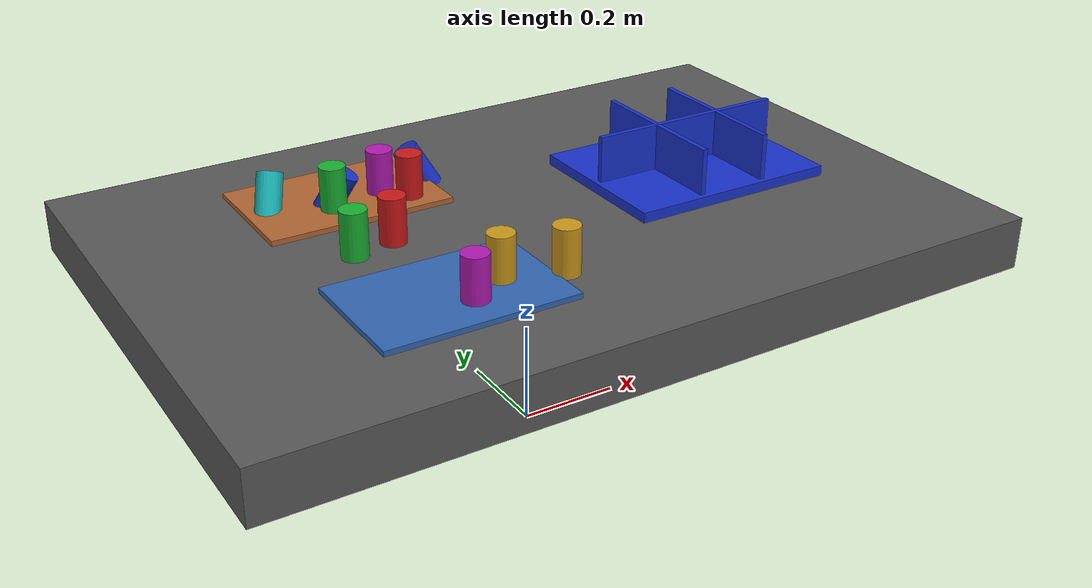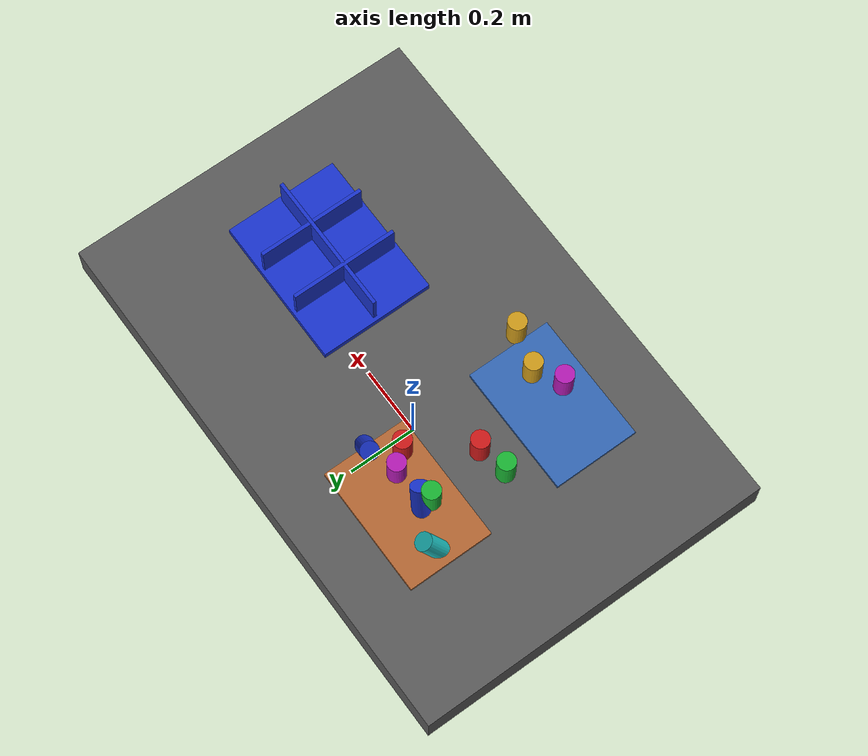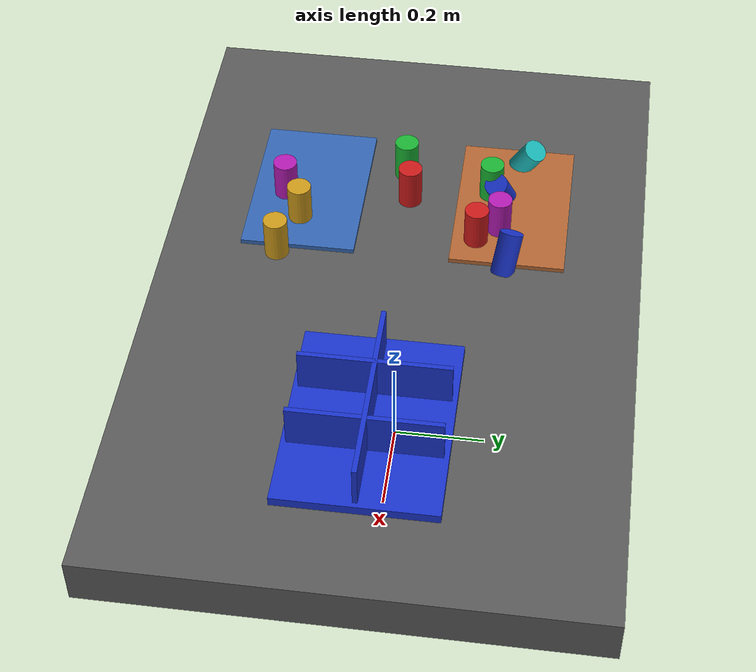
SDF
<?xml version="1.0" ?>
<sdf version="1.9">
  <!-- Standalone M1B scene.  The controller-backed Panda is spawned by the
       existing launch path; this file never alters the frozen M1A cube world. -->
  <world name="industrial_cylinder_v1">
    <physics name="bullet" type="bullet"><max_step_size>0.001</max_step_size><real_time_factor>1.0</real_time_factor></physics>
    <plugin name="gz::sim::systems::Physics" filename="gz-sim-physics-system"><engine><filename>gz-physics-bullet-featherstone-plugin</filename></engine></plugin>
    <plugin name="gz::sim::systems::UserCommands" filename="gz-sim-user-commands-system"/>
    <plugin name="gz::sim::systems::SceneBroadcaster" filename="gz-sim-scene-broadcaster-system"/>
    <plugin name="gz::sim::systems::Sensors" filename="gz-sim-sensors-system"><render_engine>ogre2</render_engine></plugin>
    <gravity>0 0 -9.81</gravity>
    <light type="directional" name="industrial_light"><pose>0 0 5 0 0 0</pose><direction>-0.3 0.2 -0.9</direction><diffuse>0.9 0.9 0.9 1</diffuse></light>
    <model name="industrial_work_table"><static>true</static><link name="link"><pose>0 0 0.4 0 0 0</pose><collision name="collision"><geometry><box><size>1.5 1.0 0.1</size></box></geometry></collision><visual name="visual"><geometry><box><size>1.5 1.0 0.1</size></box></geometry><material><diffuse>0.35 0.35 0.35 1</diffuse></material></visual></link></model>
    <model name="camera_fixture"><static>true</static><link name="camera_rgbd"><pose>-0.80 -0.80 1.40 0 0.77 0.93</pose><sensor name="front_rgbd" type="rgbd_camera"><always_on>1</always_on><update_rate>15</update_rate><topic>/xh/camera/rgbd</topic><camera><horizontal_fov>1.047</horizontal_fov><image><width>640</width><height>480</height><format>R8G8B8</format></image><clip><near>0.1</near><far>4.0</far></clip></camera></sensor></link></model>
    <model name="incoming_zone_a"><static>true</static><link name="link"><pose>-0.28 -0.22 0.455 0 0 0</pose><visual name="visual"><geometry><box><size>0.36 0.24 0.01</size></box></geometry><material><diffuse>0.2 0.4 0.7 1</diffuse></material></visual></link></model>
    <model name="incoming_zone_b"><static>true</static><link name="link"><pose>-0.28 0.22 0.455 0 0 0</pose><visual name="visual"><geometry><box><size>0.36 0.24 0.01</size></box></geometry><material><diffuse>0.7 0.4 0.2 1</diffuse></material></visual></link></model>
    <!-- M1B_RANDOM_PARTS_BEGIN -->
    <model name="cylinder_01"><pose>-0.2744 -0.0021 0.5000 0.0000 0.0000 -2.6493</pose><link name="link"><inertial><mass>0.06</mass></inertial><collision name="collision"><geometry><cylinder><radius>0.025</radius><length>0.09</length></cylinder></geometry></collision><visual name="visual"><geometry><cylinder><radius>0.025</radius><length>0.09</length></cylinder></geometry><material><diffuse>0.800 0.100 0.100 1</diffuse><specular>0.15 0.15 0.15 1</specular></material></visual></link></model>
    <model name="cylinder_02"><pose>-0.3091 0.1696 0.5000 3.1416 0.0000 1.0308</pose><link name="link"><inertial><mass>0.06</mass></inertial><collision name="collision"><geometry><cylinder><radius>0.025</radius><length>0.09</length></cylinder></geometry></collision><visual name="visual"><geometry><cylinder><radius>0.025</radius><length>0.09</length></cylinder></geometry><material><diffuse>0.100 0.700 0.200 1</diffuse><specular>0.15 0.15 0.15 1</specular></material></visual></link></model>
    <model name="cylinder_03"><pose>-0.1120 0.2198 0.4800 0.4500 -0.3000 -1.3213</pose><link name="link"><inertial><mass>0.06</mass></inertial><collision name="collision"><geometry><cylinder><radius>0.025</radius><length>0.09</length></cylinder></geometry></collision><visual name="visual"><geometry><cylinder><radius>0.025</radius><length>0.09</length></cylinder></geometry><material><diffuse>0.100 0.200 0.800 1</diffuse><specular>0.15 0.15 0.15 1</specular></material></visual></link></model>
    <model name="cylinder_04"><pose>-0.0803 -0.2590 0.5000 0.0000 0.0000 1.3158</pose><link name="link"><inertial><mass>0.06</mass></inertial><collision name="collision"><geometry><cylinder><radius>0.025</radius><length>0.09</length></cylinder></geometry></collision><visual name="visual"><geometry><cylinder><radius>0.025</radius><length>0.09</length></cylinder></geometry><material><diffuse>0.800 0.600 0.100 1</diffuse><specular>0.15 0.15 0.15 1</specular></material></visual></link></model>
    <model name="cylinder_05"><pose>-0.2027 0.1957 0.5000 3.1416 0.0000 1.6928</pose><link name="link"><inertial><mass>0.06</mass></inertial><collision name="collision"><geometry><cylinder><radius>0.025</radius><length>0.09</length></cylinder></geometry></collision><visual name="visual"><geometry><cylinder><radius>0.025</radius><length>0.09</length></cylinder></geometry><material><diffuse>0.700 0.100 0.700 1</diffuse><specular>0.15 0.15 0.15 1</specular></material></visual></link></model>
    <model name="cylinder_06"><pose>-0.4080 0.2372 0.4800 0.4500 -0.3000 3.0879</pose><link name="link"><inertial><mass>0.06</mass></inertial><collision name="collision"><geometry><cylinder><radius>0.025</radius><length>0.09</length></cylinder></geometry></collision><visual name="visual"><geometry><cylinder><radius>0.025</radius><length>0.09</length></cylinder></geometry><material><diffuse>0.100 0.700 0.700 1</diffuse><specular>0.15 0.15 0.15 1</specular></material></visual></link></model>
    <model name="cylinder_07"><pose>-0.1642 0.1505 0.5000 0.0000 0.0000 -2.7963</pose><link name="link"><inertial><mass>0.06</mass></inertial><collision name="collision"><geometry><cylinder><radius>0.025</radius><length>0.09</length></cylinder></geometry></collision><visual name="visual"><geometry><cylinder><radius>0.025</radius><length>0.09</length></cylinder></geometry><material><diffuse>0.800 0.100 0.100 1</diffuse><specular>0.15 0.15 0.15 1</specular></material></visual></link></model>
    <model name="cylinder_08"><pose>-0.3562 -0.0196 0.5000 3.1416 0.0000 -3.1104</pose><link name="link"><inertial><mass>0.06</mass></inertial><collision name="collision"><geometry><cylinder><radius>0.025</radius><length>0.09</length></cylinder></geometry></collision><visual name="visual"><geometry><cylinder><radius>0.025</radius><length>0.09</length></cylinder></geometry><material><diffuse>0.100 0.700 0.200 1</diffuse><specular>0.15 0.15 0.15 1</specular></material></visual></link></model>
    <model name="cylinder_09"><pose>-0.2965 0.1919 0.4800 0.4500 -0.3000 1.6225</pose><link name="link"><inertial><mass>0.06</mass></inertial><collision name="collision"><geometry><cylinder><radius>0.025</radius><length>0.09</length></cylinder></geometry></collision><visual name="visual"><geometry><cylinder><radius>0.025</radius><length>0.09</length></cylinder></geometry><material><diffuse>0.100 0.200 0.800 1</diffuse><specular>0.15 0.15 0.15 1</specular></material></visual></link></model>
    <model name="cylinder_10"><pose>-0.1882 -0.2273 0.5000 0.0000 0.0000 -2.8842</pose><link name="link"><inertial><mass>0.06</mass></inertial><collision name="collision"><geometry><cylinder><radius>0.025</radius><length>0.09</length></cylinder></geometry></collision><visual name="visual"><geometry><cylinder><radius>0.025</radius><length>0.09</length></cylinder></geometry><material><diffuse>0.800 0.600 0.100 1</diffuse><specular>0.15 0.15 0.15 1</specular></material></visual></link></model>
    <model name="cylinder_11"><pose>-0.2598 -0.2691 0.5000 3.1416 0.0000 2.6460</pose><link name="link"><inertial><mass>0.06</mass></inertial><collision name="collision"><geometry><cylinder><radius>0.025</radius><length>0.09</length></cylinder></geometry></collision><visual name="visual"><geometry><cylinder><radius>0.025</radius><length>0.09</length></cylinder></geometry><material><diffuse>0.700 0.100 0.700 1</diffuse><specular>0.15 0.15 0.15 1</specular></material></visual></link></model>
    <!-- M1B_RANDOM_PARTS_END -->
    <model name="blue_partition_bin"><static>true</static><pose>0.36 0 0.45 0 0 0</pose><link name="link"><collision name="floor"><pose>0 0 0.01 0 0 0</pose><geometry><box><size>0.42 0.32 0.02</size></box></geometry></collision><visual name="floor_visual"><pose>0 0 0.01 0 0 0</pose><geometry><box><size>0.42 0.32 0.02</size></box></geometry><material><diffuse>0.1 0.2 0.8 1</diffuse></material></visual><visual name="row_divider"><pose>0 0 0.06 0 0 0</pose><geometry><box><size>0.40 0.01 0.10</size></box></geometry><material><diffuse>0.1 0.2 0.8 1</diffuse></material></visual><visual name="col_divider_a"><pose>-0.07 0 0.06 0 0 0</pose><geometry><box><size>0.01 0.30 0.10</size></box></geometry><material><diffuse>0.1 0.2 0.8 1</diffuse></material></visual><visual name="col_divider_b"><pose>0.07 0 0.06 0 0 0</pose><geometry><box><size>0.01 0.30 0.10</size></box></geometry><material><diffuse>0.1 0.2 0.8 1</diffuse></material></visual></link></model>
    <!-- Reserved only: second table, bin transport corridor, stackable-bin
         collision volume, and second arm mounting namespace. -->
  </world>
</sdf>
